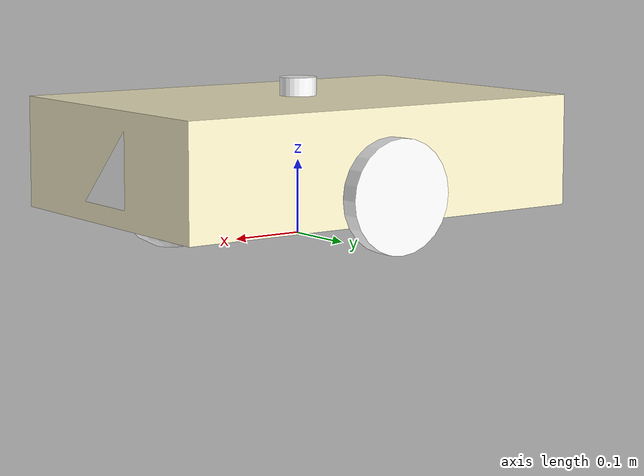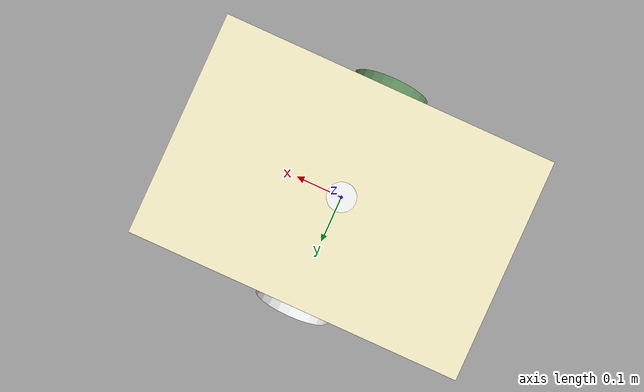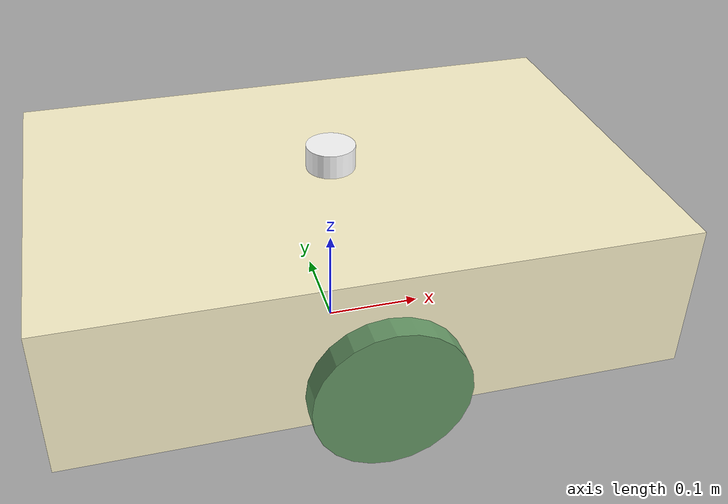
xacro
<?xml version="1.0"?>
<robot name="biibiii" xmlns:xacro="http://ros.org/wiki/xacro">

    <!-- Include the urdf/xacro file -->
    <xacro:include filename="$(find biibiii_description)/urdf/properties.xacro" />
    <xacro:include filename="$(find biibiii_description)/urdf/materials.xacro" />
    <xacro:include filename="$(find biibiii_description)/urdf/robot.gazebo.xacro" />

    <!-- Robot Base footprint-->
    <link name="base_footprint" />

    <joint name="base_joint" type="fixed">
        <parent link="base_footprint"/>
        <child link="base_link"/>
        <origin xyz="0.0 0.0 ${base_height/2+wheel_zoff}" rpy="0.0 0.0 0.0"/>
    </joint>

    <!-- Robot base link-->
    <link name="base_link">
        <visual>
            <origin xyz="0 0 0" rpy="0.0 0.0 0.0"/>
            <geometry>
                <box size="${base_width} ${base_length} ${base_height}"/>
            </geometry>
            <material name="FFF6CE" />
        </visual>

        <collision>
            <origin xyz="0 0 0" rpy="0.0 0.0 0.0"/>
            <geometry>
                <box size="${base_width} ${base_length} ${base_height}"/>
            </geometry>
        </collision>

        <xacro:box_inertia m="1" w="${base_width}" d="${base_length}" h="${base_height}" />
    </link>

    <joint name="base_to_left_wheel_joint" type="continuous">
        <parent link="base_link"/>
        <child link="left_wheel_link"/>
        <origin xyz="${-wheel_xoff} ${(base_width/2+wheel_ygap)} ${-wheel_zoff}" rpy="0 0 0"/>
        <axis xyz="0 1 0"/>
    </joint>

    <link name="left_wheel_link">
        <visual>
            <origin xyz="0.0 0.0 0" rpy="${pi/2} 0.0 0.0"/>
            <geometry>
                <cylinder radius="${wheel_radius}" length="${wheel_width}"/>
            </geometry>
            <material name="white" />
        </visual>

        <collision>
            <origin xyz="0.0 0.0 0.0" rpy="${pi/2} 0.0 0.0"/>
            <geometry>
                <cylinder radius="${wheel_radius}" length="${wheel_width}"/>
            </geometry>
        </collision>

        <xacro:cylinder_inertia m="0.5" r="${wheel_radius}" h="${wheel_width}" />
    </link>

    <joint name="base_to_right_wheel_joint" type="continuous">
        <parent link="base_link"/>
        <child link="right_wheel_link"/>
        <origin xyz="${(-wheel_xoff)} ${-(base_width/2+wheel_ygap)} ${-wheel_zoff}" rpy="0 0 0"/>
        <axis xyz="0 1 0"/>
    </joint>

    <link name="right_wheel_link">
        <visual>
            <origin xyz="0.0 0.0 0" rpy="${pi/2} 0.0 0.0"/>
            <geometry>
                <cylinder radius="${wheel_radius}" length="${wheel_width}"/>
            </geometry>
            <material name="669966" />
        </visual>

        <collision>
            <origin xyz="0.0 0.0 0.0" rpy="${pi/2} 0.0 0.0"/>
            <geometry>
                <cylinder radius="${wheel_radius}" length="${wheel_width}"/>
            </geometry>
        </collision>

        <xacro:cylinder_inertia m="0.5" r="${wheel_radius}" h="${wheel_width}" />
    </link>

    <joint name="base_to_front_caster_joint" type="continuous">
        <parent link="base_link"/>
        <child link="front_caster_link"/>
        <origin xyz="${-base_length/2} 0 ${-wheel_zoff}" rpy="0 0 0"/>
        <axis xyz="0 1 0"/>
    </joint>

    <!-- Caster Wheel -->
    <link name="front_caster_link">
        <visual>
            <geometry>
                <sphere radius="${caster_radius}"/>
            </geometry>
            <material name="669966" />
        </visual>

        <collision>
            <geometry>
                <sphere radius="${caster_radius}"/>
            </geometry>
        </collision>

        <xacro:sphere_inertia m="0.1" r="${caster_radius}"/>
    </link>

        <joint name="base_to_back_caster_joint" type="continuous">
        <parent link="base_link"/>
        <child link="back_caster_link"/>
        <origin xyz="${base_length/2} 0 ${-wheel_zoff}" rpy="0 0 0"/>
        <axis xyz="0 1 0"/>
    </joint>

    <!-- Caster Wheel -->
    <link name="back_caster_link">
        <visual>
            <geometry>
                <sphere radius="${caster_radius}"/>
            </geometry>
            <material name="white" />
        </visual>

        <collision>
            <geometry>
                <sphere radius="${caster_radius}"/>
            </geometry>
        </collision>

        <xacro:sphere_inertia m="0.1" r="${caster_radius}"/>
    </link>

    <joint name="base_to_scan_joint" type="fixed">
        <parent link="base_link"/>
        <child link="base_scan_link"/>
        <origin xyz="0 0 ${(base_height/2 + lidar_height/4)}" rpy="0 0 0"/>
        <axis xyz="0 0 1"/>
    </joint>

    <link name="base_scan_link">
        <visual>
            <origin xyz="0.0 0.0 0.0" rpy="0 0 0"/>
            <geometry>
                <cylinder radius="${lidar_radius}" length="${lidar_radius}"/>
            </geometry>
            <material name="white" />
        </visual>

        <collision>
            <origin xyz="0 0 0" rpy="0.0 0.0 0.0"/>
            <geometry>
                <cylinder radius="${lidar_radius}" length="${lidar_height}"/>
            </geometry>
        </collision>

        <xacro:cylinder_inertia m="0.007853" r="${lidar_radius}" h="${lidar_height}" />
    </link>

    <joint name="imu_joint" type="fixed">
        <parent link="base_link"/>
        <child link="imu_link"/>
        <origin xyz="0.0 0.0 0.0" rpy="0.0 0.0 0.0"/>
    </joint>
    <link name="imu_link" />

    <joint name="camera_joint" type="fixed">
        <origin xyz="${base_width/2-camera_height/2} 0.0 0.0" rpy="0.0 0.0 0.0"/>
        <parent link="base_link"/>
        <child link="base_camera_link"/>
        <axis xyz="0.0 0.0 0.0"/>
    </joint>

    <link name="base_camera_link">
        <visual>
            <origin xyz="0 0 0" rpy="1.57 0.0 1.57"/>
            <geometry>
                <box size="${camera_width} ${camera_length} ${camera_height}"/>
            </geometry>
            <material name="white" />
        </visual>

        <collision>
            <origin xyz="0.0 0.0 0.0" rpy="0.0 0.0 0.0"/>
            <geometry>
                <box size="${camera_width} ${camera_length} ${camera_height}"/>
            </geometry>
        </collision>

        <xacro:box_inertia m="0.001" w="${camera_width}" d="${camera_length}" h="${camera_height}" />
    </link>

    <joint name="camera_rgb_joint" type="fixed">
        <origin xyz="${r200_cam_rgb_px} ${r200_cam_rgb_py} ${r200_cam_rgb_pz}" rpy="0 0 0"/>
        <parent link="base_camera_link"/>
        <child link="camera_rgb_frame"/>
    </joint>
    <link name="camera_rgb_frame"/>

    <joint name="camera_rgb_optical_joint" type="fixed">
        <origin xyz="0 0 0" rpy="-1.57 0 -1.57"/>
        <parent link="camera_rgb_frame"/>
        <child link="camera_rgb_optical_frame"/>
    </joint>
    <link name="camera_rgb_optical_frame"/>

    <joint name="camera_depth_joint" type="fixed">
        <origin xyz="${r200_cam_rgb_px} ${r200_cam_rgb_py + r200_cam_depth_offset} ${r200_cam_rgb_pz}" rpy="0 0 0"/>
        <parent link="base_camera_link"/>
        <child link="camera_depth_frame"/>
    </joint>
    <link name="camera_depth_frame"/>

    <joint name="camera_depth_optical_joint" type="fixed">
        <origin xyz="0 0 0" rpy="-1.57 0 -1.57"/>
        <parent link="camera_depth_frame"/>
        <child link="camera_depth_optical_frame"/>
    </joint>
    <link name="camera_depth_optical_frame"/>

</robot>

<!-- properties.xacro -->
<robot name="biibiii"
    xmlns:xacro="http://ros.org/wiki/xacro">

    <!-- Robot base value-->
    <xacro:property name="base_width" value="0.60" />
    <xacro:property name="base_length" value="0.40" />
    <xacro:property name="base_height" value="0.15" />

    <!-- Robot wheels value-->
    <xacro:property name="wheel_radius" value="${base_height/2}" />
    <xacro:property name="wheel_width" value="${wheel_radius/3}" />

    <!-- Gap between base and wheels-->
    <xacro:property name="wheel_ygap" value="${wheel_width-0.11}" />

    <!-- Position the wheels along the x- axis and z-axis -->
    <xacro:property name="wheel_xoff" value="0" />

    <xacro:property name="wheel_zoff" value="${base_height/4}" />

    <!--lidar value-->
    <xacro:property name="lidar_height" value="${base_height/3}" />
    <xacro:property name="lidar_radius" value="${lidar_height/2}" />

    <xacro:property name="caster_radius" value="${wheel_radius}" />

    <!-- camera value-->
    <xacro:property name="camera_width" value="0.1" />
    <xacro:property name="camera_length" value="0.1" />
    <xacro:property name="camera_height" value="0.02" />

    <xacro:property name="r200_cam_rgb_px" value="0.005"/>
    <xacro:property name="r200_cam_rgb_py" value="0.018"/>
    <xacro:property name="r200_cam_rgb_pz" value="0.013"/>
    <xacro:property name="r200_cam_depth_offset" value="0.01"/>

    <!-- Define intertial property macros  -->
    <xacro:macro name="box_inertia" params="m w h d">
        <inertial>
            <origin xyz="0 0 0" rpy="${pi/2} 0 ${pi/2}"/>
            <mass value="${m}"/>
            <inertia ixx="${(m/12) * (h*h + d*d)}" ixy="0.0" ixz="0.0" iyy="${(m/12) * (w*w + d*d)}" iyz="0.0" izz="${(m/12) * (w*w + h*h)}"/>
        </inertial>
    </xacro:macro>

    <xacro:macro name="cylinder_inertia" params="m r h">
        <inertial>
            <origin xyz="0.0 0.0 0.0" rpy="${pi/2} 0.0 ${pi/2}"/>
            <mass value="${m}"/>
            <inertia ixx="${(m/12) * (3*r*r + h*h)}" ixy = "0" ixz = "0" iyy="${(m/12) * (3*r*r + h*h)}" iyz = "0" izz="${(m/2) * (r*r)}"/>
        </inertial>
    </xacro:macro>

    <xacro:macro name="sphere_inertia" params="m r">
        <inertial>
            <mass value="${m}"/>
            <inertia ixx="${(2/5) * m * (r*r)}" ixy="0.0" ixz="0.0" iyy="${(2/5) * m * (r*r)}" iyz="0.0" izz="${(2/5) * m * (r*r)}"/>
        </inertial>
    </xacro:macro>

</robot>

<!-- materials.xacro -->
<robot name="biibiii" xmlns:xacro="http://ros.org/wiki/xacro">

    <!-- Define color value-->
    <material name="red">
        <color rgba="1 0 0 1"/>
    </material>

    <material name="blue">
        <color rgba="0 0 1 1"/>
    </material>

    <material name="green">
        <color rgba="0 1 0 1"/>
    </material>

    <material name="white">
        <color rgba="1 1 1 1"/>
    </material>

    <material name="669966">
        <color rgba="0.4 0.5961 0.4 1"/>
    </material>

    <material name="FFF6CE">
        <color rgba="1 0.9647 0.8078 1"/>
    </material>

</robot>
